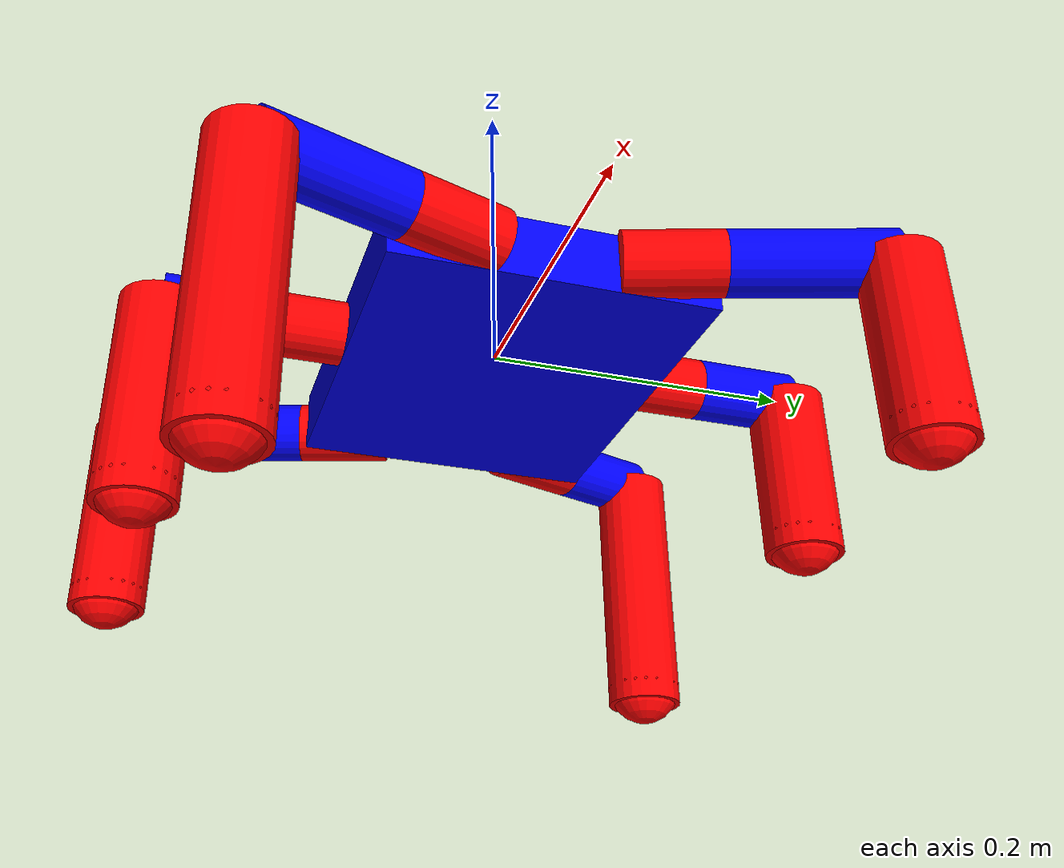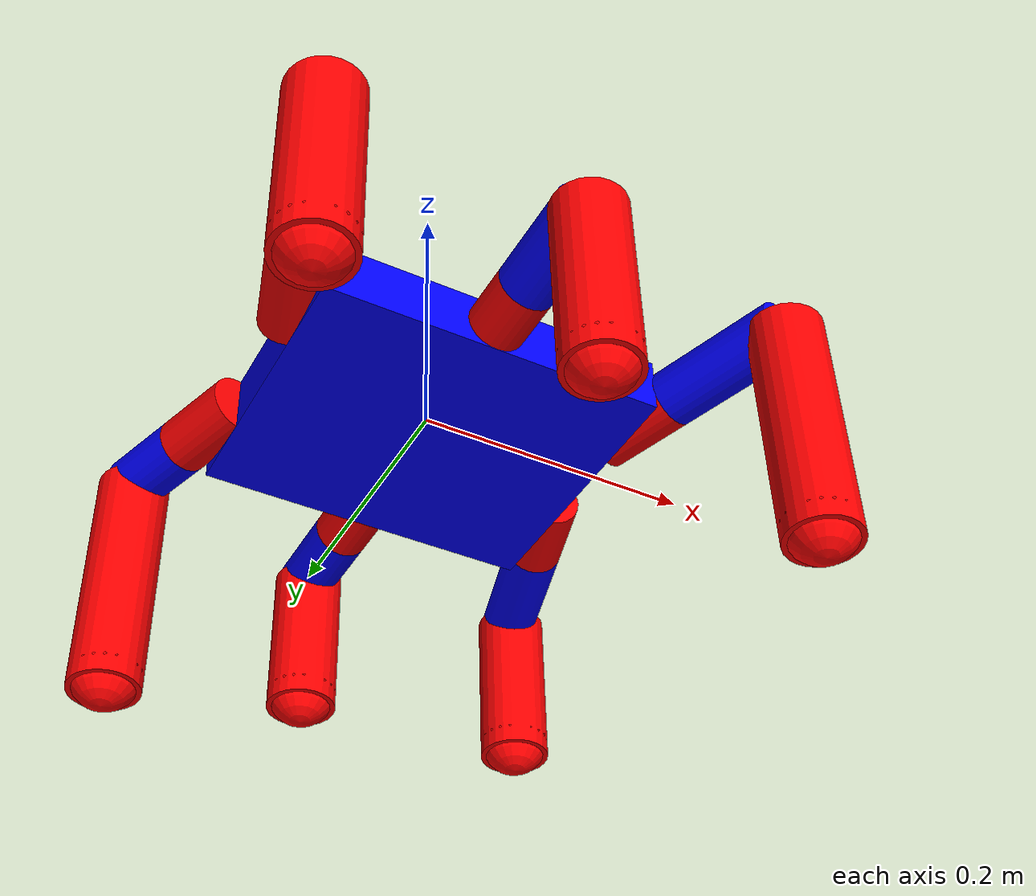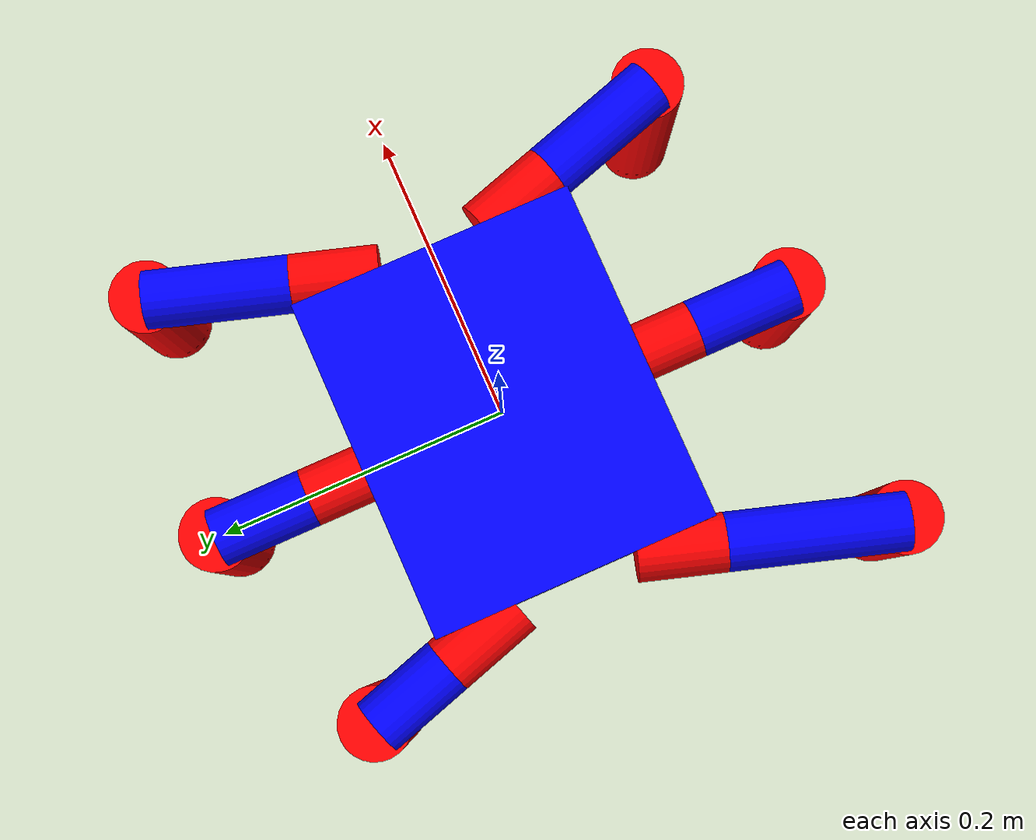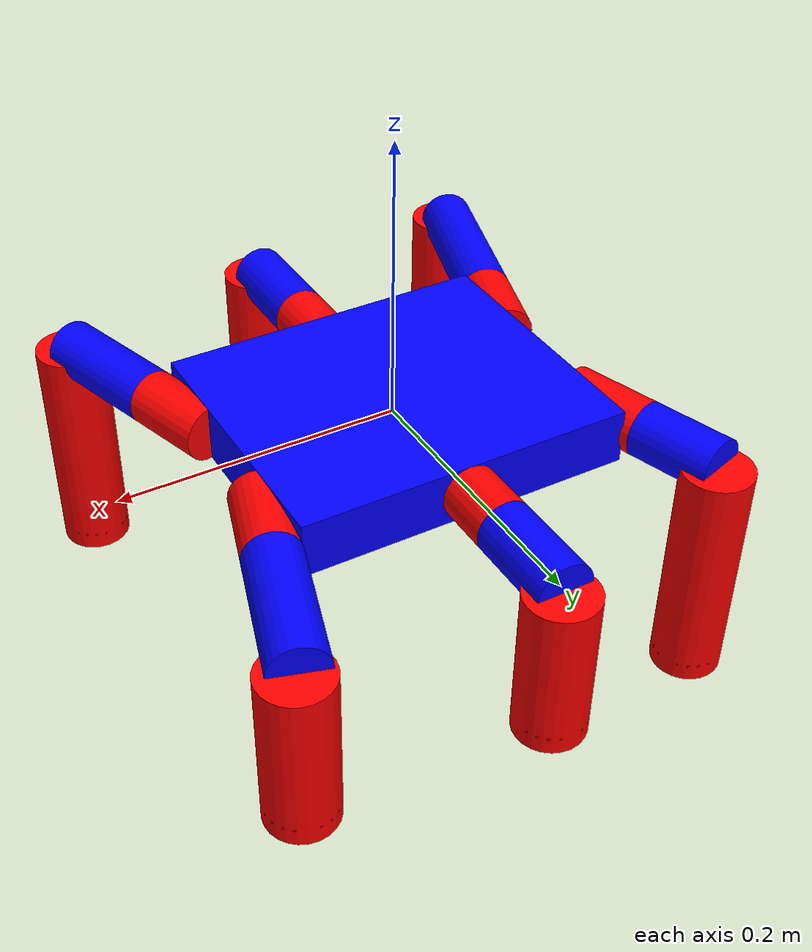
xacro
<?xml version="1.0"?>
<robot xmlns:xacro="http://www.ros.org/wiki/xacro">

  <!-- XACRO PROPERTIES -->
  <xacro:property name="PI" value="3.14159265359" />
  <xacro:property name="PI_2" value="1.57079632679" />
  <xacro:property name="PI_4" value="0.78539816339" />
  <xacro:property name="scale" value="0.001" />
  <xacro:property name="body_mass" value="1.031"/>
  <xacro:property name="body_length" value="0.24"/>
  <xacro:property name="body_width" value="0.2"/>
  <xacro:property name="body_height" value="0.04"/>

  <xacro:property name="leg1_width" value="0.02"/>
  <xacro:property name="leg1_length" value="0.06"/>
  <xacro:property name="leg1_dist" value="0.2"/>
  <xacro:property name="leg1_mass" value="0.02"/>

  <xacro:property name="leg2_width" value="0.02"/>
  <xacro:property name="leg2_dist" value="0.2"/>
  <xacro:property name="leg2_mass" value="0.184"/>

  <xacro:property name="leg3_width" value="0.025"/>
  <xacro:property name="leg3_dist" value="0.2"/>
  <xacro:property name="leg3_mass" value="0.04"/>

  <xacro:property name="joint_lim" value="${PI_2}"/>
  <xacro:property name="joint_lim2" value="${PI_4}"/>
  <xacro:property name="joint_eff" value="30.0"/>
  <xacro:property name="joint_vel" value="7.0"/>
  <xacro:property name="joint_dmp" value="0.0"/>

  <xacro:property name="end_leg_lenght_0" value="0.1710724238"/>
  <xacro:property name="end_leg_lenght_1" value="0.112832676842"/>
  <xacro:property name="end_leg_lenght_2" value="0.118580396678"/>
  <xacro:property name="end_leg_lenght_3" value="0.17121455382"/>
  <xacro:property name="end_leg_lenght_4" value="0.132714081127"/>
  <xacro:property name="end_leg_lenght_5" value="0.133089883124"/>

  <xacro:property name="mid_leg_lenght_0" value="0.0606450913199"/>
  <xacro:property name="mid_leg_lenght_1" value="0.06653684716"/>
  <xacro:property name="mid_leg_lenght_2" value="0.0988183427764"/>
  <xacro:property name="mid_leg_lenght_3" value="0.0916923999471"/>
  <xacro:property name="mid_leg_lenght_4" value="0.0713142195319"/>
  <xacro:property name="mid_leg_lenght_5" value="0.121756106183"/>

  <xacro:include filename="$(find hexapod_description)/urdf/pexod_visuals_collisions.xacro" />

  <!-- Load xacro modules/parts of the robot -->
  <xacro:include filename="$(find hexapod_description)/urdf/modules/body.xacro" />
  <xacro:include filename="$(find hexapod_description)/urdf/modules/leg.xacro" />
  <xacro:include filename="$(find hexapod_description)/urdf/modules/legs.xacro" />
</robot>

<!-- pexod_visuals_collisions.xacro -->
<robot xmlns:xacro="http://www.ros.org/wiki/xacro">

  <!-- MATERIALS -->
  <material name="Blue">
    <color rgba="0 0 1 1"/>
  </material>
  <material name="Red">
    <color rgba="1 0 0 1"/>
  </material>
  <material name="Green">
    <color rgba="0 1 0 1"/>
  </material>
  <material name="Yellow">
    <color rgba="1 1 0 1"/>
  </material>
  <material name="LightGrey">
    <color rgba="0.6 0.6 0.6 1.0"/>
  </material>

    <!-- END OF MATERIALS -->

    <!-- XACRO MACROS FOR VISUALS AND COLLISIONS -->

    <xacro:macro name="visuals_collisions_body" params="">
    <visual>
      <origin xyz="0 0 0" rpy="0 0 0"/>
            <geometry>
                <box size="${body_length} ${body_width} ${body_height}"/>
            </geometry>
      <material name="Blue"/>
    </visual>
    <collision>
      <origin xyz="0 0 0" rpy="0 0 0"/>
            <geometry>
                <box size="${body_length} ${body_width} ${body_height}"/>
            </geometry>
    </collision>
  </xacro:macro>

  <xacro:macro name="visuals_collisions_leg_1" params="revert">
    <visual>
      <origin xyz="${leg1_width/2} ${revert*leg1_length/2} 0" rpy="${PI_2} 0 0"/>
            <geometry>
                <cylinder radius="${leg1_width}" length="${leg1_length}"/>
            </geometry>
      <material name="Red"/>
    </visual>
    <collision>
      <origin xyz="${leg1_width/2} ${revert*leg1_length/2} 0" rpy="${PI_2} 0 0"/>
            <geometry>
                <box size="${leg1_width} ${leg1_width} ${leg1_length}"/>
            </geometry>
    </collision>
  </xacro:macro>

  <xacro:macro name="visuals_collisions_leg_2" params="revert mid_leg_lenght">
    <visual>
      <origin xyz="${leg2_width/2} ${revert*mid_leg_lenght/2} 0" rpy="${PI_2} 0 0"/>
            <geometry>
                <cylinder radius="${leg2_width}" length="${mid_leg_lenght}"/>
            </geometry>
      <material name="Blue"/>
    </visual>
    <collision>
      <origin xyz="${leg2_width/2} ${revert*mid_leg_lenght/2} 0" rpy="${PI_2} 0 0"/>
            <geometry>
                <box size="${leg2_width} ${leg2_width} ${mid_leg_lenght}"/>
            </geometry>
    </collision>
  </xacro:macro>

  <xacro:macro name="visuals_collisions_leg_3" params="revert index end_leg_lenght">
      <visual>
        <origin xyz="${leg3_width/2} ${revert*end_leg_lenght/2} 0" rpy="${PI_2} 0 0"/>
              <geometry>
                <cylinder radius="${leg3_width}" length="${end_leg_lenght}"/>
              </geometry>
        <material name="Red"/>
      </visual>
      <visual>
        <origin xyz="${leg3_width/2} ${revert*end_leg_lenght-revert*leg3_width/2} 0" rpy="${PI_2} 0 0"/>
              <geometry>
                  <sphere radius="${leg3_width}"/>
              </geometry>
        <material name="Red"/>
      </visual>
    <collision>
      <origin xyz="${leg3_width/2} ${revert*end_leg_lenght/2} 0" rpy="${PI_2} 0 0"/>
            <geometry>
                <box size="${leg3_width} ${leg3_width} ${end_leg_lenght}"/>
            </geometry>
    </collision>
    <collision>
      <origin xyz="${leg3_width/2} ${revert*end_leg_lenght-revert*leg3_width/2} 0" rpy="${PI_2} 0 0"/>
            <geometry>
                <sphere radius="${leg3_width}"/>
            </geometry>
      <material name="Red"/>
    </collision>
  </xacro:macro>
  <!-- END OF XACRO MACROS -->

</robot>

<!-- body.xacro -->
<robot xmlns:xacro="http://www.ros.org/wiki/xacro">
    <!-- TORSO -->
    <link name="base_link">
        <xacro:visuals_collisions_body/>
        <inertial>
            <!-- CENTER OF MASS -->
            <origin rpy="0 0 0" xyz="0 0 0"/>
            <mass value="${body_mass}"/>
            <!-- box inertia: 1/12*m(y^2+z^2), ... -->
            <inertia ixx="${1/12*body_mass*(body_width*body_width+body_height*body_height)}" ixy="0" ixz="0" iyy="${1/12*body_mass*(body_length*body_length+body_height*body_height)}" iyz="0" izz="${1/12*body_mass*(body_length*body_length+body_width*body_width)}"/>
        </inertial>
    </link>
</robot>

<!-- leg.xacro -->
<robot xmlns:xacro="http://www.ros.org/wiki/xacro">
  <!-- XACRO MACRO FOR LEGS LINKS/JOINTS -->

    <xacro:macro name="leg" params="index xPos yPos sign end_leg_lenght mid_leg_lenght">
        <joint name="body_leg_${index}" type="revolute">
            <parent link="base_link"/>
            <child link="leg_${index}_1"/>
            <limit effort="${joint_eff}" lower="${-joint_lim}" upper="${joint_lim}" velocity="${joint_vel}"/>
            <xacro:if value="${index == 5 or index == 2}">
                <origin rpy="0 0 -0.3" xyz="${xPos} ${yPos-sign*leg1_width} 0"/>
            </xacro:if>
            <xacro:if value="${index == 0 or index == 3}">
                <origin rpy="0 0 0.3" xyz="${xPos} ${yPos-sign*leg1_width} 0"/>
            </xacro:if>
            <xacro:if value="${index == 1 or index == 4}">
                <origin rpy="0 0 0" xyz="${xPos} ${yPos-sign*leg1_width} 0"/>
            </xacro:if>
                <axis xyz="0 0 1"/>
            <dynamics damping="${joint_dmp}"/>
        </joint>
        <link name="leg_${index}_1">
            <xacro:visuals_collisions_leg_1 revert="${sign}"/>
            <inertial>
                <!-- CENTER OF MASS -->
                <origin rpy="${PI_2} 0 0" xyz="${leg1_width/2} ${sign*leg1_length/2} 0"/>
                <mass value="${leg1_mass}"/>
                <!-- box inertia: 1/12*m(y^2+z^2), ... -->
                <inertia ixx="${1/12*leg1_mass*(leg1_width*leg1_width+leg1_length*leg1_length)}" ixy="0" ixz="0" iyy="${1/12*leg1_mass*(leg1_width*leg1_width+leg1_length*leg1_length)}" iyz="0" izz="${1/12*leg1_mass*(2*leg1_width*leg1_width)}"/>
            </inertial>
        </link>
        <joint name="leg_${index}_1_2" type="revolute">
            <parent link="leg_${index}_1"/>
            <child link="leg_${index}_2"/>
            <limit effort="${joint_eff}" lower="${-joint_lim2}" upper="${joint_lim2}" velocity="${joint_vel}"/>
            <origin rpy="0 0 0" xyz="0 ${sign*leg1_length} 0"/>
            <xacro:if value="${index == 5 or index == 4 or index == 3}">
                <axis xyz="-1 0 0"/>
            </xacro:if>
            <xacro:if value="${index == 2 or index == 1 or index == 0}">
                <axis xyz="1 0 0"/>
            </xacro:if>
            <dynamics damping="${joint_dmp}"/>
        </joint>
        <link name="leg_${index}_2">
            <xacro:visuals_collisions_leg_2 revert="${sign}"  mid_leg_lenght="${mid_leg_lenght}"/>
            <inertial>
                <!-- CENTER OF MASS -->
                <origin rpy="${PI_2} 0 0" xyz="${leg2_width/2} ${sign*mid_leg_lenght/2} 0"/>
                <mass value="${leg2_mass}"/>
                <!-- box inertia: 1/12*m(y^2+z^2), ... -->
                <inertia ixx="${1/12*leg2_mass*(leg2_width*leg2_width+mid_leg_lenght*mid_leg_lenght)}" ixy="0" ixz="0" iyy="${1/12*leg2_mass*(leg2_width*leg2_width+mid_leg_lenght*mid_leg_lenght)}" iyz="0" izz="${1/12*leg2_mass*(2*leg2_width*leg2_width)}"/>
            </inertial>
        </link>
        <joint name="leg_${index}_2_3" type="revolute">
            <parent link="leg_${index}_2"/>
            <child link="leg_${index}_3"/>
            <limit effort="${joint_eff}" lower="${-joint_lim2}" upper="${joint_lim2}" velocity="${joint_vel}"/>
            <origin rpy="${-sign*PI_2} 0 0" xyz="0 ${sign*mid_leg_lenght} 0"/>
            <xacro:if value="${index == 5 or index == 4 or index == 3}">
                <axis xyz="1 0 0"/>
            </xacro:if>
            <xacro:if value="${index == 2 or index == 1 or index == 0}">
                <axis xyz="-1 0 0"/>
            </xacro:if>
            <dynamics damping="${joint_dmp}"/>
        </joint>
        <link name="leg_${index}_3">
            <xacro:visuals_collisions_leg_3 revert="${sign}" index="${index}" end_leg_lenght="${end_leg_lenght}"/>
            <inertial>
                <!-- CENTER OF MASS -->
                <origin rpy="${PI_2} 0 0" xyz="${leg3_width/2} ${sign*end_leg_lenght/2} 0"/>
                <mass value="${leg3_mass}"/>
                <!-- box inertia: 1/12*m(y^2+z^2), ... -->
                <inertia ixx="${1/12*leg3_mass*(leg3_width*leg3_width+end_leg_lenght*end_leg_lenght)}" ixy="0" ixz="0" iyy="${1/12*leg3_mass*(leg3_width*leg3_width+end_leg_lenght*end_leg_lenght)}" iyz="0" izz="${1/12*leg3_mass*(2*leg3_width*leg3_width)}"/>
            </inertial>
        </link>
    </xacro:macro>
  <!-- END OF LEG LINKS/JOINTS -->
</robot>
